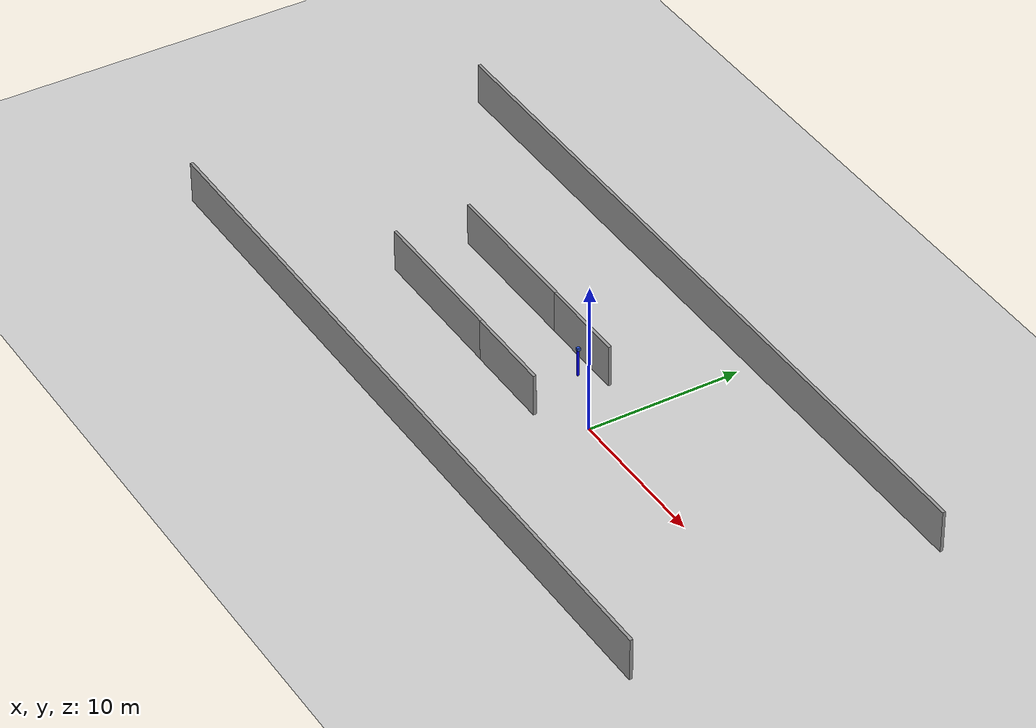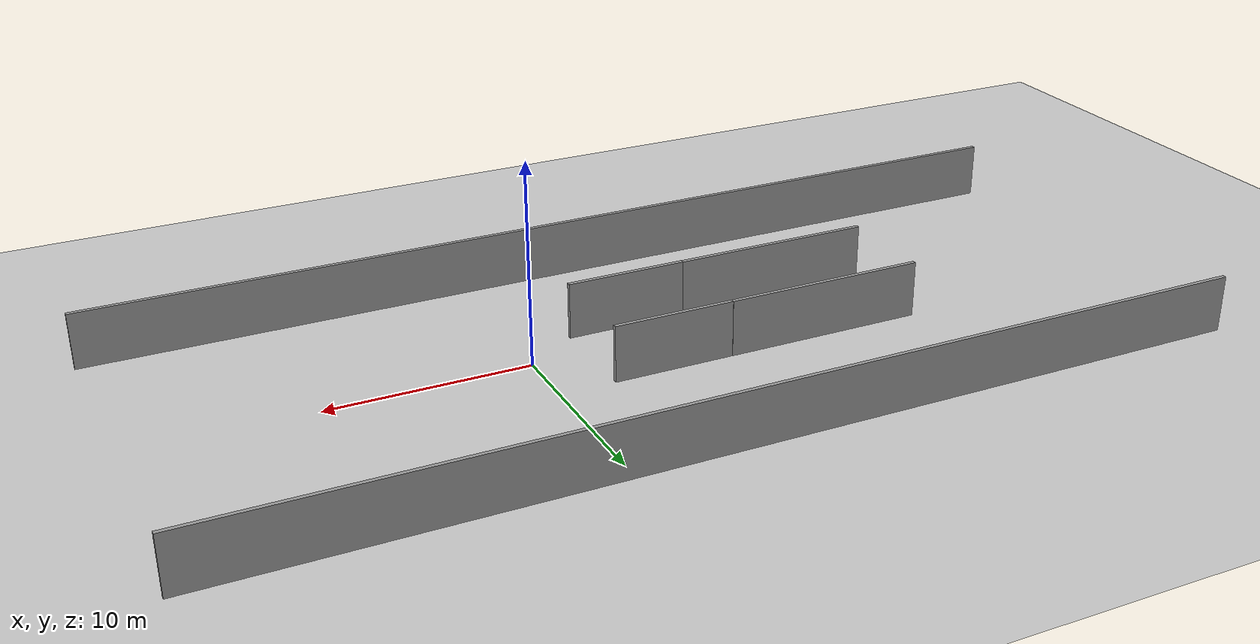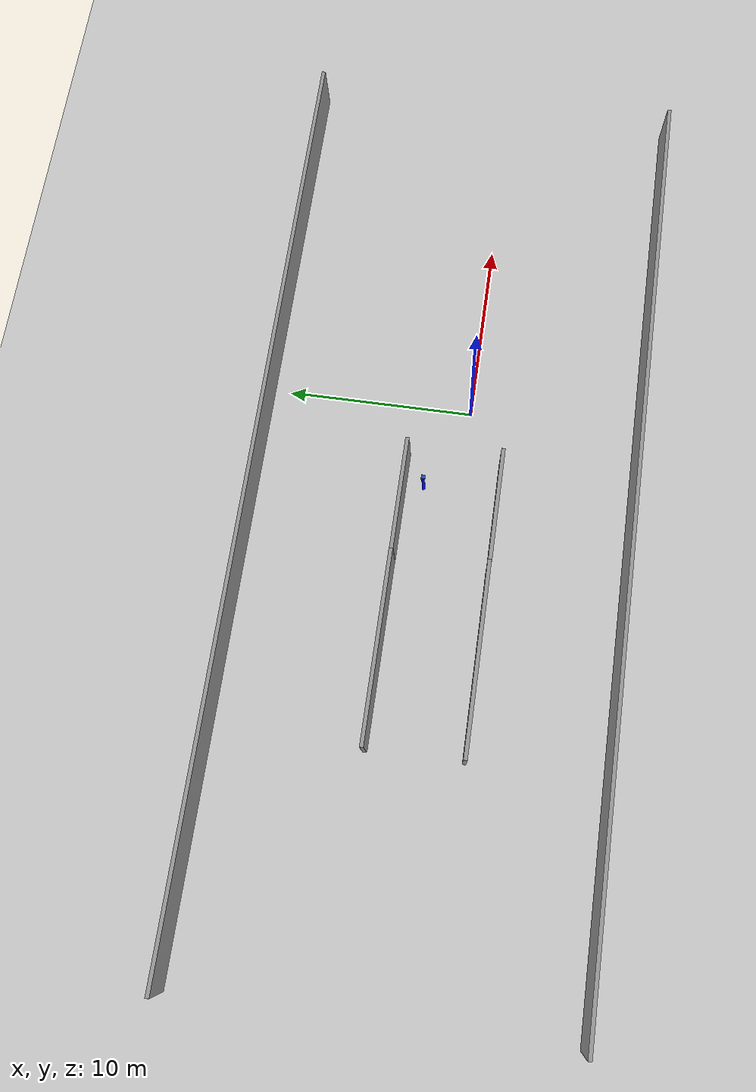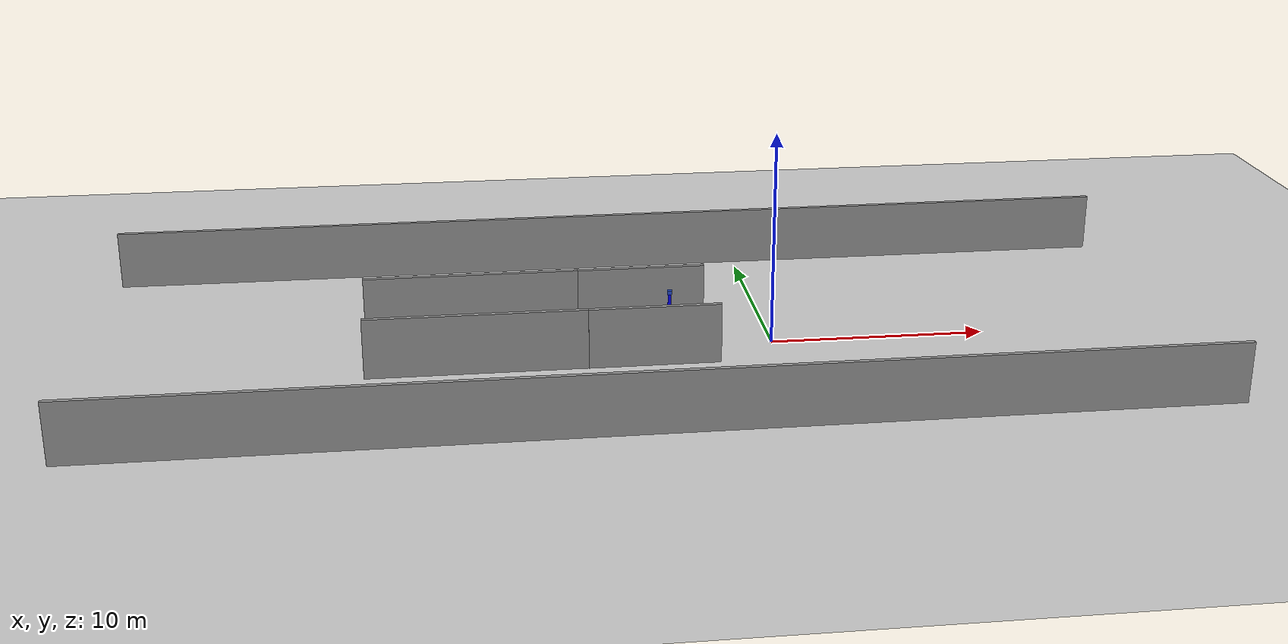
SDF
<sdf version="1.7">
 <world name="simulate_indoor">
  <model name="ground_plane">
   <static>1</static>
   <link name="link">
    <collision name="collision">
     <geometry><plane><normal>0 0 1</normal><size>100 100</size></plane></geometry>
     <surface>
      <contact><collide_bitmask>65535</collide_bitmask></contact>
      <friction><ode><mu>100</mu><mu2>50</mu2></ode></friction>
     </surface>
    </collision>
    <visual name="visual">
     <cast_shadows>0</cast_shadows>
     <geometry><plane><normal>0 0 1</normal><size>100 100</size></plane></geometry>
     <material>
      <script><uri>file://media/materials/scripts/gazebo.material</uri><name>Gazebo/Grey</name></script>
     </material>
    </visual>
   </link>
  </model>
  <model name="grey_wall_media">
   <static>1</static>
   <link name="link">
    <pose>0 0 1.4 0 -0 0</pose>
    <collision name="collision"><geometry><box><size>6 0.2 2.8</size></box></geometry></collision>
    <visual name="visual">
     <cast_shadows>0</cast_shadows>
     <geometry><box><size>6 0.2 2.8</size></box></geometry>
     <material>
      <script>
       <uri>model://grey_wall_media/materials/scripts</uri>
       <uri>model://grey_wall_media/materials/textures</uri>
       <name>vrc/grey_wall_media</name>
      </script>
     </material>
    </visual>
   </link>
   <pose>-5.74936 3.07485 0 0 -0 0</pose>
  </model>
  <model name="grey_wall_short_2_0">
   <static>1</static>
   <link name="link">
    <pose>0 0 1.4 0 -0 0</pose>
    <collision name="collision"><geometry><box><size>10 0.2 2.8</size></box></geometry></collision>
    <visual name="visual">
     <cast_shadows>0</cast_shadows>
     <geometry><box><size>10 0.2 2.8</size></box></geometry>
     <material>
      <script>
       <uri>model://grey_wall_short_2/materials/scripts</uri>
       <uri>model://grey_wall_short_2/materials/textures</uri>
       <name>vrc/grey_wall_short_2</name>
      </script>
     </material>
    </visual>
   </link>
   <pose>-13.7444 3.08471 0 0 -0 0</pose>
  </model>
  <model name="grey_wall_short_2_0_clone">
   <static>1</static>
   <link name="link">
    <pose>0 0 1.4 0 -0 0</pose>
    <collision name="collision"><geometry><box><size>10 0.2 2.8</size></box></geometry></collision>
    <visual name="visual">
     <cast_shadows>0</cast_shadows>
     <geometry><box><size>10 0.2 2.8</size></box></geometry>
     <material>
      <script>
       <uri>model://grey_wall_short_2/materials/scripts</uri>
       <uri>model://grey_wall_short_2/materials/textures</uri>
       <name>vrc/grey_wall_short_2</name>
      </script>
     </material>
    </visual>
   </link>
   <pose>-13.6992 -1.94162 0 0 -0 0</pose>
  </model>
  <model name="grey_wall_media_clone">
   <static>1</static>
   <link name="link">
    <pose>0 0 1.4 0 -0 0</pose>
    <collision name="collision"><geometry><box><size>6 0.2 2.8</size></box></geometry></collision>
    <visual name="visual">
     <cast_shadows>0</cast_shadows>
     <geometry><box><size>6 0.2 2.8</size></box></geometry>
     <material>
      <script>
       <uri>model://grey_wall_media/materials/scripts</uri>
       <uri>model://grey_wall_media/materials/textures</uri>
       <name>vrc/grey_wall_media</name>
      </script>
     </material>
    </visual>
   </link>
   <pose>-5.70004 -1.95558 0 0 -0 0</pose>
  </model>
  <model name="grey_wall_long">
   <static>1</static>
   <link name="link">
    <pose>0 0 1.4 0 -0 0</pose>
    <collision name="collision"><geometry><box><size>50 0.2 2.8</size></box></geometry></collision>
    <visual name="visual">
     <cast_shadows>0</cast_shadows>
     <geometry><box><size>50 0.2 2.8</size></box></geometry>
     <material>
      <script>
       <uri>model://grey_wall_long/materials/scripts</uri>
       <uri>model://grey_wall_long/materials/textures</uri>
       <name>vrc/grey_wall_long</name>
      </script>
     </material>
    </visual>
   </link>
   <pose>-6 11 0 0 -0 0</pose>
  </model>
  <model name="grey_wall_long_clone">
   <static>1</static>
   <link name="link">
    <pose>0 0 1.4 0 -0 0</pose>
    <collision name="collision"><geometry><box><size>50 0.2 2.8</size></box></geometry></collision>
    <visual name="visual">
     <cast_shadows>0</cast_shadows>
     <geometry><box><size>50 0.2 2.8</size></box></geometry>
     <material>
      <script>
       <uri>model://grey_wall_long/materials/scripts</uri>
       <uri>model://grey_wall_long/materials/textures</uri>
       <name>vrc/grey_wall_long</name>
      </script>
     </material>
    </visual>
   </link>
   <pose>-5.9877 -9.04478 0 0 -0 0</pose>
  </model>
  <model name="UWB_2">
   <link name="link_1">
    <inertial>
     <mass>1</mass>
     <inertia><ixx>0.145833</ixx><ixy>0</ixy><ixz>0</ixz><iyy>0.145833</iyy><iyz>0</iyz><izz>0.125</izz></inertia>
    </inertial>
    <pose>0 0 0.95 0 -0 0</pose>
    <visual name="visual">
     <geometry><cylinder><radius>0.08</radius><length>1.9</length></cylinder></geometry>
     <material>
      <lighting>1</lighting>
      <script><uri>file://media/materials/scripts/gazebo.material</uri><name>Gazebo/Grey</name></script>
      <shader type="pixel"><normal_map>__default__</normal_map></shader>
      <ambient>0 0 1 1</ambient>
      <diffuse>0 0 1 1</diffuse>
      <specular>0 0 1 1</specular>
      <emissive>0 0 1 1</emissive>
     </material>
    </visual>
    <collision name="collision">
     <geometry><cylinder><radius>0.08</radius><length>1.9</length></cylinder></geometry>
     <surface>
      <friction>
       <ode><mu>1</mu><mu2>1</mu2><fdir1>0 0 0</fdir1><slip1>0</slip1><slip2>0</slip2></ode>
       <torsional>
        <coefficient>1</coefficient>
        <patch_radius>0</patch_radius>
        <surface_radius>0</surface_radius>
        <use_patch_radius>1</use_patch_radius>
        <ode><slip>0</slip></ode>
       </torsional>
      </friction>
      <bounce><restitution_coefficient>0</restitution_coefficient><threshold>1e+06</threshold></bounce>
      <contact>
       <collide_without_contact>0</collide_without_contact>
       <collide_without_contact_bitmask>1</collide_without_contact_bitmask>
       <collide_bitmask>1</collide_bitmask>
       <ode>
        <soft_cfm>0</soft_cfm>
        <soft_erp>0.2</soft_erp>
        <kp>1e+13</kp>
        <kd>1</kd>
        <max_vel>0.01</max_vel>
        <min_depth>0</min_depth>
       </ode>
       <bullet>
        <split_impulse>1</split_impulse>
        <split_impulse_penetration_threshold>-0.01</split_impulse_penetration_threshold>
        <soft_cfm>0</soft_cfm>
        <soft_erp>0.2</soft_erp>
        <kp>1e+13</kp>
        <kd>1</kd>
       </bullet>
      </contact>
     </surface>
    </collision>
   </link>
   <link name="link_2">
    <inertial>
     <mass>1</mass>
     <inertia>
      <ixx>0.166667</ixx>
      <ixy>0</ixy>
      <ixz>0</ixz>
      <iyy>0.166667</iyy>
      <iyz>0</iyz>
      <izz>0.166667</izz>
     </inertia>
    </inertial>
    <pose>0 0 1.9 0 -0 0</pose>
    <visual name="visual">
     <geometry><box><size>0.2 0.2 0.2</size></box></geometry>
     <material>
      <lighting>1</lighting>
      <script><uri>file://media/materials/scripts/gazebo.material</uri><name>Gazebo/Blue</name></script>
      <shader type="pixel"><normal_map>__default__</normal_map></shader>
      <ambient>1 0 0 1</ambient>
      <diffuse>1 0 0 1</diffuse>
      <specular>1 0 0 1</specular>
      <emissive>1 0 0 1</emissive>
     </material>
    </visual>
    <collision name="collision">
     <geometry><box><size>0.2 0.2 0.2</size></box></geometry>
     <surface>
      <friction>
       <ode><mu>1</mu><mu2>1</mu2><fdir1>0 0 0</fdir1><slip1>0</slip1><slip2>0</slip2></ode>
       <torsional>
        <coefficient>1</coefficient>
        <patch_radius>0</patch_radius>
        <surface_radius>0</surface_radius>
        <use_patch_radius>1</use_patch_radius>
        <ode><slip>0</slip></ode>
       </torsional>
      </friction>
      <bounce><restitution_coefficient>0</restitution_coefficient><threshold>1e+06</threshold></bounce>
      <contact>
       <collide_without_contact>0</collide_without_contact>
       <collide_without_contact_bitmask>1</collide_without_contact_bitmask>
       <collide_bitmask>1</collide_bitmask>
       <ode>
        <soft_cfm>0</soft_cfm>
        <soft_erp>0.2</soft_erp>
        <kp>1e+13</kp>
        <kd>1</kd>
        <max_vel>0.01</max_vel>
        <min_depth>0</min_depth>
       </ode>
       <bullet>
        <split_impulse>1</split_impulse>
        <split_impulse_penetration_threshold>-0.01</split_impulse_penetration_threshold>
        <soft_cfm>0</soft_cfm>
        <soft_erp>0.2</soft_erp>
        <kp>1e+13</kp>
        <kd>1</kd>
       </bullet>
      </contact>
     </surface>
    </collision>
   </link>
   <static>1</static>
   <pose>-4.51643 2.02504 0 0 -0 0</pose>
  </model>
 </world>
</sdf>
